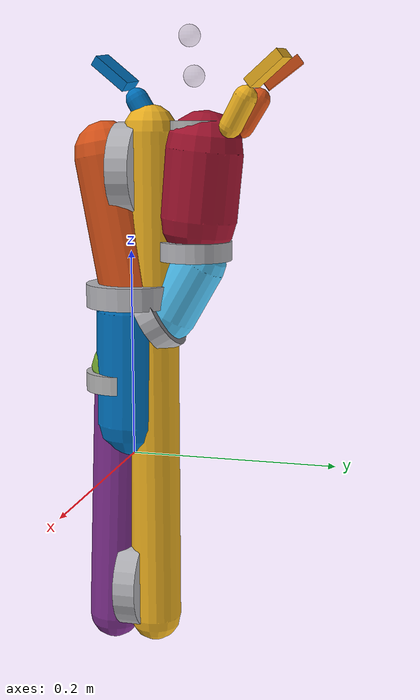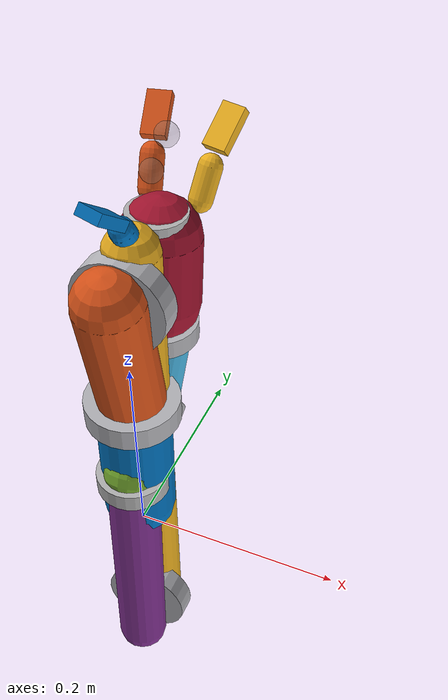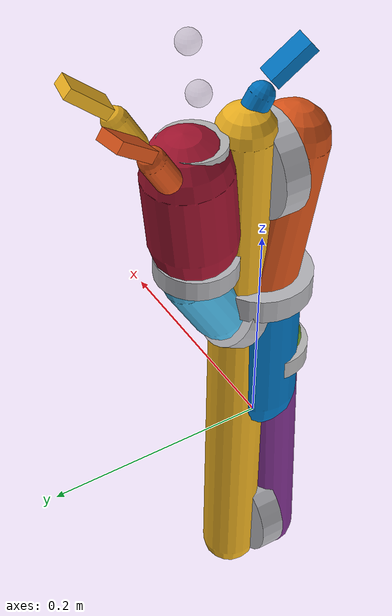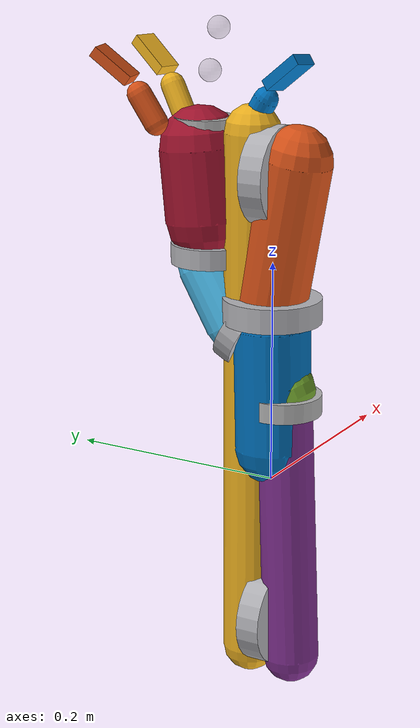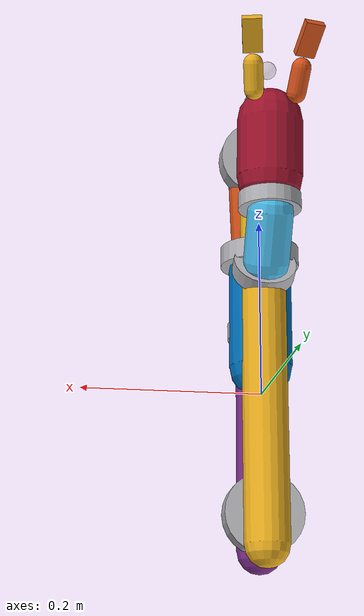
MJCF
<mujoco model='jaco'>
    <default>
        <geom contype='1' conaffinity='1' condim='3' friction='.1 .1' solimp='.95 .98 .0005' solref='0.02 1.1'
              density='1'/>
        <joint type='hinge' armature='0' damping='0'
               solimpfriction='.95 .95 0' solreffriction='.02 1' solimplimit='0 .99 .01' solreflimit='.02 1'/>
        <site rgba='.5 .5 .5 .3'/>
        <general ctrllimited='true' ctrlrange='-0.84 0.84' forcelimited='true'/>
        <default class='big_joint'>
            <joint frictionloss='.01' armature='1' damping='0.01' range='-3.141592653589793 9.42477796076938'
                   limited='false'/>
            <velocity kv='20' forcerange='-3.15 3.15'/>
        </default>
        <default class='little_joint'>
            <joint frictionloss='.01' armature='1' damping='0.01' range='-3.141592653589793 9.42477796076938'
                   limited='false'/>
            <velocity kv='20' forcerange='-3.15 3.15'/>
        </default>
        <default class='finger'>
            <joint frictionloss='0.1' armature='.1' axis='0 0 1' limited='true' range='0.15 1.2' damping='.1'/>
            <velocity kv='10' ctrlrange='-0.84 0.84' gear='1' forcerange='-1.5 1.5'/>
        </default>
        <default class='fingertip'>
            <geom type='box' pos='0.065 -0.022 0' size='0.02 .005 .011' rgba='1 0 0 1'
                  quat='1 0 0 -0.235' condim='4'/>
            <site type='ellipsoid' pos='0.065 -0.022 0' size='0.02 .005 .011'
                  quat='1 0 0 -0.235'/>
        </default>

        <default class='base'>
            <geom type='capsule' size='0.0350512 0.0555543' pos='-0.000132925 -0.000516418 0.0820911'
                  quat='0.6951 -0.00714564 0.00738544 0.71884'/>
        </default>
        <default class='link_1'>
            <geom type='capsule' size='0.031417 0.0668352' pos='-3.49946e-05 0.010651 -0.0670012'
                  quat='0.704277 0.0627825 -0.0628 0.70435'/>
        </default>
        <default class='link_2'>
            <geom type='capsule' size='0.0251592 0.240341' pos='0.205004 7.5835e-05 -0.0202812'
                  quat='2.23957e-06 0.707108 5.30416e-06 0.707106'/>
        </default>
        <default class='link_3'>
            <geom type='capsule' size='0.0255647 0.120643' pos='0.0843942 7.48907e-06 -0.0177123'
                  quat='-4.64475e-05 0.692702 -4.11814e-05 0.721224'/>
        </default>
        <default class='link_4'>
            <geom type='capsule' size='0.0257405 0.0289568' pos='0.0101659 -4.64261e-05 -0.0369867'
                  quat='0.965925 1.43712e-05 -0.258823 3.85082e-06'/>
        </default>
        <default class='link_5'>
            <geom type='capsule' size='0.0257405 0.0289568' pos='0.0101659 -4.64261e-05 -0.0369867'
                  quat='0.965925 1.43712e-05 -0.258823 3.85082e-06'/>
        </default>
        <default class='link_6'>
            <geom type='capsule' size='0.0368731 0.0322296' pos='0.00628384 -2.92087e-05 -0.0608681'
                  quat='0.708562 -0.0338601 -0.0358744 0.703923'/>
        </default>
        <default class='finger_knuckle'>
            <geom type='capsule' size='0.0108231 0.0145116' pos='0.0190913 -0.0112192 1.10387e-06'
                  quat='0.475811 -0.475815 0.523071 -0.523068'/>
        </default>

    </default>

    <worldbody>
        <body name='b_base' pos='0 0 0.005'>
            <site type='sphere' size='.01' name='basesite' pos='0 0 0' rgba='1 0 0 1'/>
            <inertial pos='-0.000132925 -0.000516418 0.0820911' quat='0.6951 -0.00714556 0.00738537 0.71884'
                      mass='0.00718278' diaginertia='0.00157301 0.00157269 0.00058831'/>
            <geom name='base' class='base' rgba='0 0.4470 0.7410 1'/>
            <body name='b_1' pos='0 0 0.1535' quat='0 -1 0 0'>
                <inertial pos='-3.49946e-005 0.010651 -0.0670012' quat='0.704277 0.0627825 -0.0628 0.70435'
                          mass='0.00644357' diaginertia='0.00172311 0.00163259 0.00042883'/>
                <joint name='joint_1' class='big_joint' axis='0 0 1'/>
                <geom name='link_1' class='link_1' rgba='0.8500 0.3250 0.0980 1'/>
                <geom name='ring_1' contype='0' conaffinity='0' type='cylinder' size='0.044 0.011' pos='0 0 0'
                      rgba='0.7 0.7 0.72 1'/>
                <body name='b_2' pos='0 0 -0.1185'
                      quat='-0.7071067811865475 0.7071067811865475 0.7071067811865475 0.7071067811865475'>
                    <inertial pos='0.205004 7.5835e-005 -0.0202812' quat='2.24027e-006 0.707108 5.30493e-006 0.707106'
                              mass='0.011691' diaginertia='0.0253426 0.0250512 0.000536357'/>
                    <joint name='joint_2' class='big_joint' axis='0 0 1'/>
                    <geom name='link_2' class='link_2' rgba='0.9290 0.6940 0.1250 1'/>
                    <geom name='ring_2' contype='0' conaffinity='0' type='cylinder' size='0.044 0.011' pos='0 0 0'
                          euler='0 0 0' rgba='0.7 0.7 0.72 1'/>
                    <body name='b_3' pos='0.41 0 0' quat='0 0 1 0'>
                        <inertial pos='0.0843942 7.48909e-006 -0.0177123'
                                  quat='-4.64469e-005 0.692702 -4.11798e-005 0.721224' mass='0.00673417'
                                  diaginertia='0.00420255 0.00409328 0.000303584'/>
                        <joint name='joint_3' class='big_joint' axis='0 0 1'
                               range='0.6131110819452792 5.673924357222234' limited='true'/>
                        <geom name='link_3' class='link_3' rgba='0.4940 0.1840 0.5560 1'/>
                        <geom name='ring_3' contype='0' conaffinity='0' type='cylinder' size='0.044 0.011' pos='0 0 0'
                              euler='0 0 0' rgba='0.7 0.7 0.72 1'/>
                        <body name='b_4' pos='0.207 0 -0.01125' quat='-0.7071067811865475 0 0.7071067811865475 0'>
                            <inertial pos='0.0101659 -4.64261e-005 -0.0369867'
                                      quat='0.965925 1.91737e-005 -0.258823 -1.40769e-005' mass='0.00221423'
                                      diaginertia='0.0001816 0.000174586 9.79319e-005'/>
                            <joint name='joint_4' class='little_joint' axis='0 0 1'/>
                            <geom name='link_4' class='link_4' rgba='0.4660 0.6740 0.1880 1'/>
                            <geom name='ring_4' contype='0' conaffinity='0' type='cylinder' size='0.035 0.009'
                                  pos='0 0 0' euler='0 0 0' rgba='0.7 0.7 0.7 1'/>
                            <body name='b_5' pos='0.037 0 -0.06408' quat='0 0.5 0 -0.8660254037844386'>
                                <inertial pos='0.0101659 -4.64261e-005 -0.0369867'
                                          quat='0.965925 1.91737e-005 -0.258823 -1.40769e-005' mass='0.00221423'
                                          diaginertia='0.0001816 0.000174586 9.79319e-005'/>
                                <joint name='joint_5' class='little_joint' axis='0 0 1'/>
                                <geom name='ring_5' contype='0' conaffinity='0' type='cylinder' size='0.035 0.009'
                                      pos='0 0 0' euler='0 0 0' rgba='0.7 0.7 0.72 1'/>
                                <geom name='link_5' class='link_5' rgba='0.3010 0.7450 0.9330 1'/>
                                <body name='b_hand' pos='0.037 0 -0.06408' quat='0 -0.5 0 0.8660254037844386'>
                                    <camera name='cam_hand' pos='0 .015 -.13' fovy='135'/>
                                    <site type='sphere' size='.01' name='wristsite' pos='0 0 0' rgba='1 0 0 1'/>
                                    <site type='sphere' size='.01' name='gripsite' pos='0 0 -.16' rgba='.5 .5 .5 .3'/>
                                    <site type='sphere' size='.01' name='pinchsite' pos='0 0.015 -0.195'
                                          rgba='.5 .5 .5 .3'/>
                                    <inertial pos='0.00628384 -2.92087e-005 -0.0608681'
                                              quat='0.708562 -0.0338601 -0.0358744 0.703923' mass='0.00547172'
                                              diaginertia='0.000759818 0.000676099 0.0004995'/>
                                    <joint name='joint_6' class='little_joint' axis='0 0 1'/>
                                    <geom name='link_6' class='link_6' rgba='0.6350 0.0780 0.1840 1'/>
                                    <geom name='ring_hand' contype='0' conaffinity='0' type='cylinder'
                                          size='0.035 0.009' pos='0 0 0' euler='0 0 0' rgba='0.7 0.7 0.72 1'/>

                                    <body name='b_palm' pos='0.005 0 -0.11' euler='0 0 0'>
                                        <geom type='cylinder' contype='0' conaffinity='7' size='.0275 0.01'
                                              friction='1 1' rgba='0.7 0.7 0.7 1' name='palm'/>
                                    </body>

                                    <body name='b_finger_1' childclass='finger' pos='-0.029 .003 -0.1145'
                                          quat='-0.414818 -0.329751 -0.663854 0.52772'>
                                        <inertial pos='0.0485761 -0.000715511 0'
                                                  quat='0.507589 0.507348 0.492543 0.492294' mass='0.000379077'
                                                  diaginertia='4.00708e-005 4.00527e-005 2.156e-006'/>
                                        <joint name='joint_finger_1'/>
                                        <geom name='finger_knuckle_1' class='finger_knuckle' rgba='0 0.4470 0.7410 1'/>
                                        <geom class='fingertip' name='finger_tip_1' rgba='0 0.4470 0.7410 1'/>
                                        <site class='fingertip' name='fingertip1'/>
                                    </body>
                                    <body name='b_finger_2' childclass='finger' pos='0.0295 0.0216 -0.115'
                                          quat='0.561254 -0.620653 0.321748 0.443014'>
                                        <inertial pos='0.0485761 -0.000715511 0'
                                                  quat='0.507589 0.507348 0.492543 0.492294' mass='0.000379077'
                                                  diaginertia='4.00708e-005 4.00527e-005 2.156e-006'/>
                                        <joint name='joint_finger_2'/>
                                        <geom name='finger_knuckle_2' class='finger_knuckle'
                                              rgba='0.9290 0.6940 0.1250 1'/>
                                        <geom class='fingertip' name='finger_tip_2' rgba='0.9290 0.6940 0.1250 1'/>
                                        <site class='fingertip' name='fingertip2'/>
                                    </body>
                                    <body name='b_finger_3' childclass='finger' pos='0.0295 -0.0216 -0.1145'
                                          quat='0.625248 -0.567602 0.434845 0.312735'>
                                        <inertial pos='0.0485761 -0.000715511 0'
                                                  quat='0.507589 0.507348 0.492543 0.492294' mass='0.000379077'
                                                  diaginertia='4.00708e-005 4.00527e-005 2.156e-006'/>
                                        <joint name='joint_finger_3'/>
                                        <geom name='finger_knuckle_3' class='finger_knuckle'
                                              rgba='0.8500 0.3250 0.0980 1'/>
                                        <geom class='fingertip' name='finger_tip_3' rgba='0.8500 0.3250 0.0980 1'/>
                                        <site class='fingertip' name='fingertip3'/>
                                    </body>
                                </body>
                            </body>
                        </body>
                    </body>
                </body>
            </body>
        </body>
    </worldbody>

    <contact>
        <exclude body1='b_base' body2='b_1'/>
        <exclude body1='b_finger_1' body2='b_finger_2'/>
        <exclude body1='b_finger_1' body2='b_finger_3'/>
        <exclude body1='b_finger_2' body2='b_finger_3'/>
    </contact>

    <sensor>
        <touch name="fingertip1" site='fingertip1'/>
        <touch name="fingertip2" site='fingertip2'/>
        <touch name="fingertip3" site='fingertip3'/>
        <force name="wristforce" site='wristsite'/>
        <torque name="wristtorque" site='wristsite'/>
        <force name="baseforce" site='basesite'/>
        <torque name="basetorque" site='basesite'/>
    </sensor>

    <actuator>
        <velocity joint='joint_1' class='big_joint'/>
        <velocity joint='joint_2' class='big_joint'/>
        <velocity joint='joint_3' class='big_joint'/>
        <velocity joint='joint_4' class='little_joint'/>
        <velocity joint='joint_5' class='little_joint'/>
        <velocity joint='joint_6' class='little_joint'/>
        <velocity joint='joint_finger_1' class='finger'/>
        <velocity joint='joint_finger_2' class='finger'/>
        <velocity joint='joint_finger_3' class='finger'/>
    </actuator>
</mujoco>
